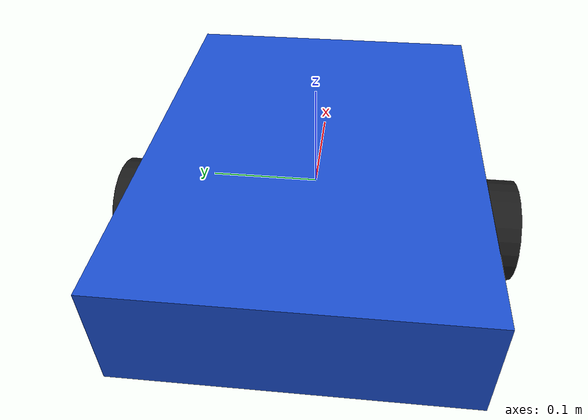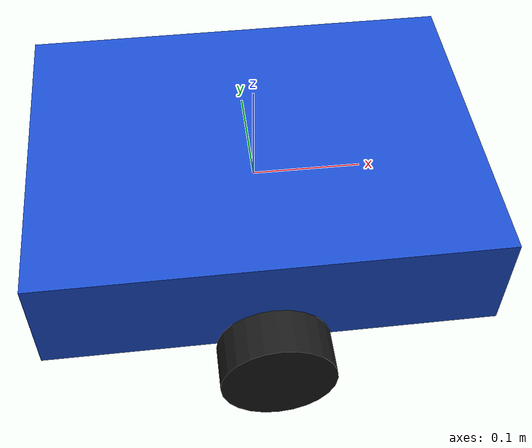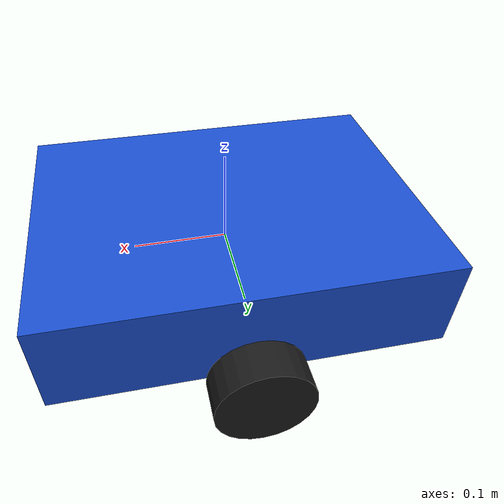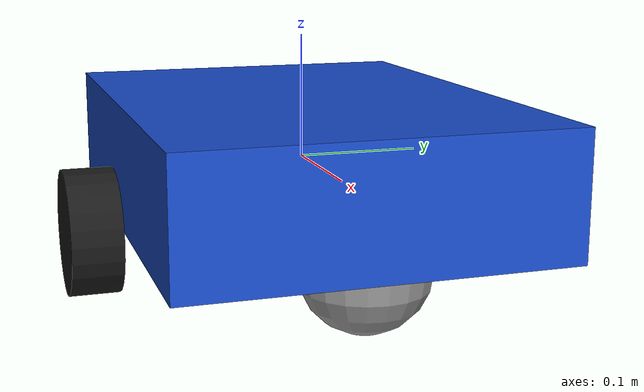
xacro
<?xml version="1.0"?>
<robot name="diffbot" xmlns:xacro="http://www.ros.org/wiki/xacro">

  <!-- Dimensions (meters) and masses (kg) -->
  <xacro:property name="PI"        value="3.14159265"/>
  <xacro:property name="chassis_l" value="0.40"/>
  <xacro:property name="chassis_w" value="0.30"/>
  <xacro:property name="chassis_h" value="0.10"/>
  <xacro:property name="chassis_m" value="5.0"/>
  <xacro:property name="wheel_r"   value="0.05"/>
  <xacro:property name="wheel_len" value="0.04"/>
  <xacro:property name="wheel_m"   value="0.5"/>
  <xacro:property name="wheel_sep" value="0.35"/>
  <xacro:property name="caster_r"  value="0.05"/>
  <xacro:property name="caster_m"  value="0.2"/>

  <!-- true: the EKF publishes odom->base_link instead of diff-drive plugin -->
  <xacro:arg name="use_ekf" default="false"/>

  <!-- Inertia helpers: standard formulas -->
  <xacro:macro name="box_inertia" params="m x y z">
    <inertial>
      <mass value="${m}"/>
      <inertia ixx="${m*(y*y+z*z)/12}" ixy="0" ixz="0"
               iyy="${m*(x*x+z*z)/12}" iyz="0"
               izz="${m*(x*x+y*y)/12}"/>
    </inertial>
  </xacro:macro>

  <xacro:macro name="cylinder_inertia" params="m r h">
    <inertial>
      <mass value="${m}"/>
      <inertia ixx="${m*(3*r*r+h*h)/12}" ixy="0" ixz="0"
               iyy="${m*(3*r*r+h*h)/12}" iyz="0"
               izz="${m*r*r/2}"/>
    </inertial>
  </xacro:macro>

  <xacro:macro name="sphere_inertia" params="m r">
    <inertial>
      <mass value="${m}"/>
      <inertia ixx="${2*m*r*r/5}" ixy="0" ixz="0"
               iyy="${2*m*r*r/5}" iyz="0"
               izz="${2*m*r*r/5}"/>
    </inertial>
  </xacro:macro>

  <!-- Chassis -->
  <link name="base_link">
    <visual>
      <geometry>
        <box size="${chassis_l} ${chassis_w} ${chassis_h}"/>
      </geometry>
      <material name="blue">
        <color rgba="0.1 0.3 0.8 1"/>
      </material>
    </visual>
    <collision>
      <geometry>
        <box size="${chassis_l} ${chassis_w} ${chassis_h}"/>
      </geometry>
    </collision>
    <xacro:box_inertia m="${chassis_m}" x="${chassis_l}" y="${chassis_w}" z="${chassis_h}"/>
  </link>

  <gazebo reference="base_link">
    <material>Gazebo/Blue</material>
  </gazebo>

  <!-- Wheels-->
  <xacro:macro name="wheel" params="side y">

    <link name="${side}_wheel">
      <visual>
        <geometry>
          <cylinder radius="${wheel_r}" length="${wheel_len}"/>
        </geometry>
        <material name="black"><color rgba="0.1 0.1 0.1 1"/></material>
      </visual>
      <collision>
        <geometry>
          <cylinder radius="${wheel_r}" length="${wheel_len}"/>
        </geometry>
      </collision>
      <xacro:cylinder_inertia m="${wheel_m}" r="${wheel_r}" h="${wheel_len}"/>
    </link>

    <joint name="${side}_wheel_joint" type="continuous">
      <parent link="base_link"/>
      <child link="${side}_wheel"/>
      <origin xyz="0 ${y} ${-chassis_h/2}" rpy="${-PI/2} 0 0"/>
      <axis xyz="0 0 1"/>
    </joint>

    <gazebo reference="${side}_wheel">
      <mu1>1.0</mu1><mu2>1.0</mu2>
      <material>Gazebo/Black</material>
    </gazebo>

  </xacro:macro>

  <!-- Make two wheels-->

  <xacro:wheel side="left"  y="${ wheel_sep/2}"/>
  <xacro:wheel side="right" y="${-wheel_sep/2}"/>

  <!-- Caster -->
  <link name="caster">
    <visual>
      <geometry>
        <sphere radius="${caster_r}"/>
      </geometry>
      <material name="grey">
        <color rgba="0.6 0.6 0.6 1"/>
      </material>
    </visual>
    <collision>
      <geometry>
        <sphere radius="${caster_r}"/>
      </geometry>
    </collision>
    <xacro:sphere_inertia m="${caster_m}" r="${caster_r}"/>
  </link>

  <joint name="caster_joint" type="fixed">
    <parent link="base_link"/>
    <child link="caster"/>
    <origin xyz="${chassis_l/2 - caster_r} 0 ${-chassis_h/2}"/>
  </joint>

  <gazebo reference="caster">
    <mu1>0.0</mu1> <!-- no friction (slides along instead of dragging)-->
    <mu2>0.0</mu2>
    <material>Gazebo/Grey</material>
  </gazebo>

  <!-- Diff-drive controller: motors + wheel encoders -->
  <gazebo>
    <plugin name="diff_drive" filename="libgazebo_ros_diff_drive.so">
      <ros>
        <remapping>odom:=wheel/odometry</remapping> <!-- rename topic to wheel/odometry-->
      </ros>
      <update_rate>50</update_rate> <!-- publish 50 times per sec -->
      <left_joint>left_wheel_joint</left_joint>
      <right_joint>right_wheel_joint</right_joint>
      <wheel_separation>${wheel_sep}</wheel_separation>
      <wheel_diameter>${2*wheel_r}</wheel_diameter>
      <max_wheel_torque>20</max_wheel_torque>
      <max_wheel_acceleration>2.0</max_wheel_acceleration>

      <odometry_source>0</odometry_source> <!-- default is 1, need to set to 0 -->
      <publish_odom>true</publish_odom>

      <xacro:if value="$(arg use_ekf)">
        <publish_odom_tf>false</publish_odom_tf>
      </xacro:if>
      <xacro:unless value="$(arg use_ekf)">
        <publish_odom_tf>true</publish_odom_tf>
      </xacro:unless>

      <publish_wheel_tf>false</publish_wheel_tf>
      <odometry_frame>odom</odometry_frame>
      <robot_base_frame>base_link</robot_base_frame>
    </plugin>
  </gazebo>

  <!-- Publishes real wheel angles so the wheels show correctly in RViz  -->
  <gazebo>
    <plugin name="joint_states" filename="libgazebo_ros_joint_state_publisher.so">
      <ros>
        <remapping>~/out:=joint_states</remapping>
      </ros>
      <update_rate>50</update_rate>
      <joint_name>left_wheel_joint</joint_name>
      <joint_name>right_wheel_joint</joint_name>
    </plugin>
  </gazebo>

    <!-- IMU: mounted on top of the chassis, centered -->
  <link name="imu_link"/>
  <joint name="imu_joint" type="fixed">
    <parent link="base_link"/>
    <child link="imu_link"/>
    <origin xyz="0 0 ${chassis_h/2}" rpy="0 0 0"/>
  </joint>

  <!-- Noise helper: one Gaussian noise block -->
  <xacro:macro name="noise" params="std bias_mean bias_std">
    <noise type="gaussian">
      <mean>0.0</mean>
      <stddev>${std}</stddev>
      <bias_mean>${bias_mean}</bias_mean>
      <bias_stddev>${bias_std}</bias_stddev>
    </noise>
  </xacro:macro>

  <gazebo reference="imu_link">
    <sensor name="imu_sensor" type="imu">
      <always_on>true</always_on>
      <update_rate>100</update_rate>
      <plugin name="imu_plugin" filename="libgazebo_ros_imu_sensor.so">
        <ros>
          <remapping>~/out:=imu/data</remapping>
        </ros>
        <initial_orientation_as_reference>false</initial_orientation_as_reference>
        <frame_name>imu_link</frame_name>
      </plugin>
      <imu>
        <angular_velocity>
          <x><xacro:noise std="2e-4" bias_mean="7.5e-6" bias_std="8e-7"/></x>
          <y><xacro:noise std="2e-4" bias_mean="7.5e-6" bias_std="8e-7"/></y>
          <z><xacro:noise std="2e-4" bias_mean="7.5e-6" bias_std="8e-7"/></z>
        </angular_velocity>
        <linear_acceleration>
          <x><xacro:noise std="1.7e-2" bias_mean="0.1" bias_std="0.001"/></x>
          <y><xacro:noise std="1.7e-2" bias_mean="0.1" bias_std="0.001"/></y>
          <z><xacro:noise std="1.7e-2" bias_mean="0.1" bias_std="0.001"/></z>
        </linear_acceleration>
      </imu>
    </sensor>
  </gazebo>

  <!-- Robot's true pose from Gazebo (only for evaluation) -->
  <gazebo>
    <plugin name="ground_truth" filename="libgazebo_ros_p3d.so">
      <ros>
        <remapping>odom:=ground_truth/odom</remapping>
      </ros>
      <body_name>base_link</body_name>
      <frame_name>world</frame_name>
      <update_rate>50</update_rate>
      <gaussian_noise>0.0</gaussian_noise>
    </plugin>
  </gazebo>

</robot>
